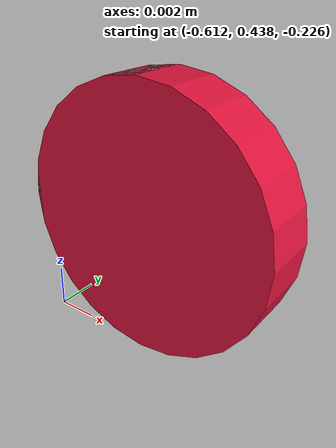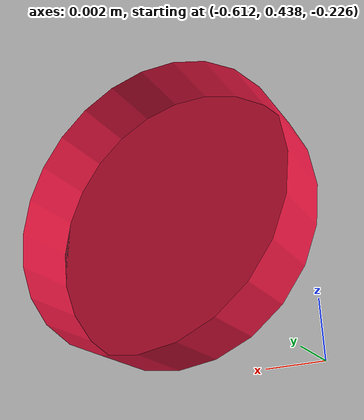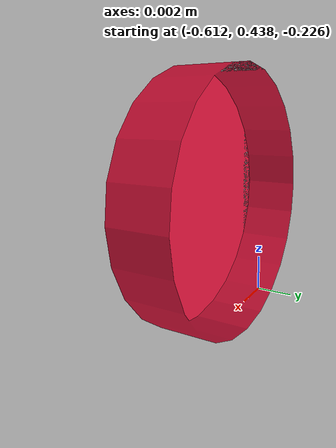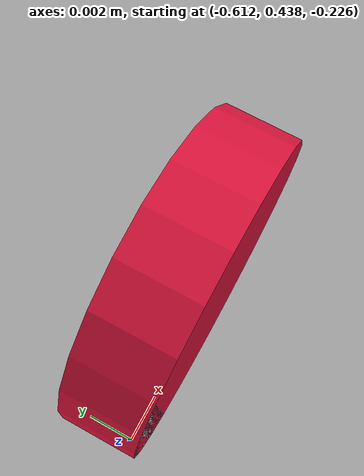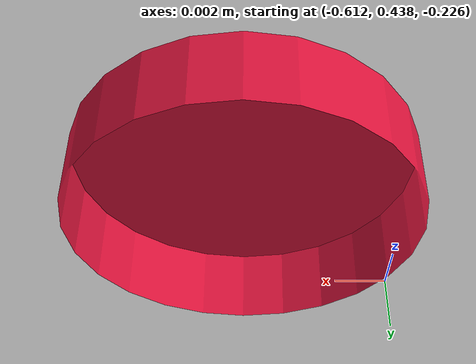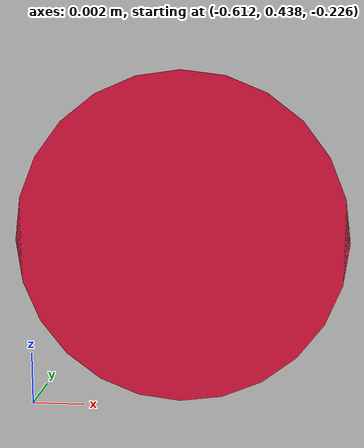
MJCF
<mujoco model="original-63">
  <default>
    <default class="visual">
      <geom group="2" type="mesh" contype="0" conaffinity="0"/>
    </default>
    <default class="collision">
      <geom group="3" type="mesh"/>
    </default>
  </default>
  <asset>
    <material name="material_0_0" specular="0.06666666666666667" shininess="0.03" rgba="0.8 0.8 0.8 1"/>
    <material name="material_1_0" specular="0.06666666666666667" shininess="0.03" rgba="0.8627450980392157 0.07450980392156863 0.23137254901960785 1"/>
    <mesh file="original-63_0.obj"/>
    <mesh file="original-63_1.obj"/>
  </asset>
  <worldbody>
    <body name="original-63">
      <geom mesh="original-63_0" material="material_1_0" class="visual"/>
      <geom mesh="original-63_1" material="material_0_0" class="visual"/>
      <geom mesh="original-63_0" class="collision"/>
      <geom mesh="original-63_1" class="collision"/>
    </body>
  </worldbody>
</mujoco>
